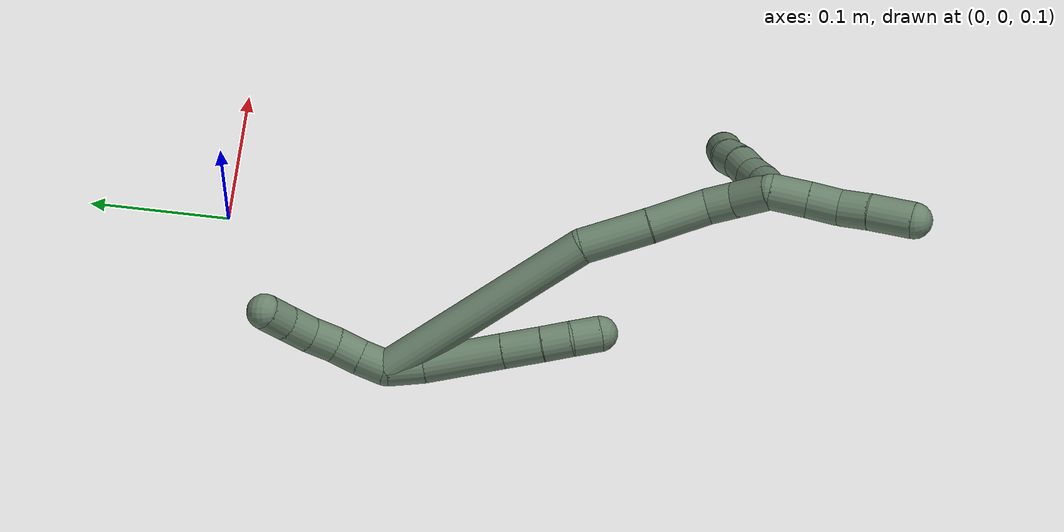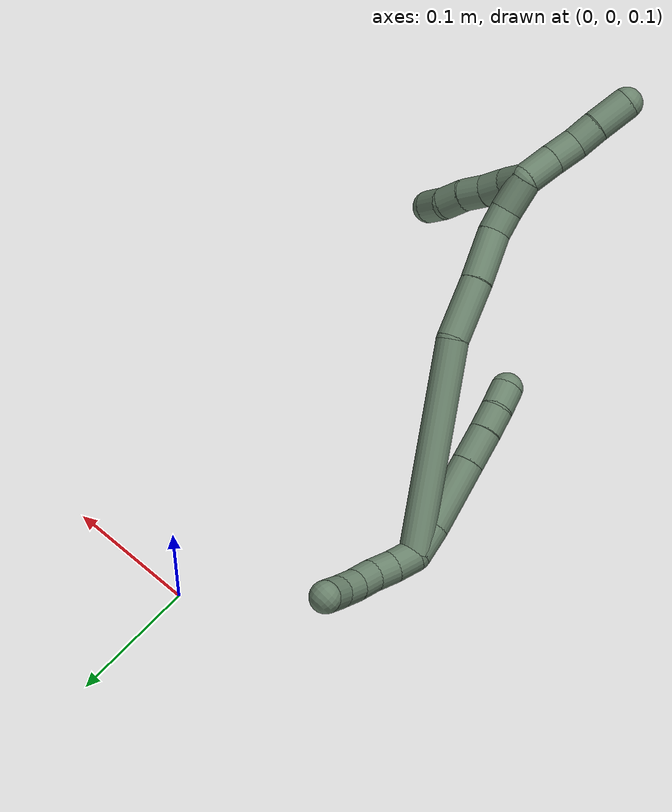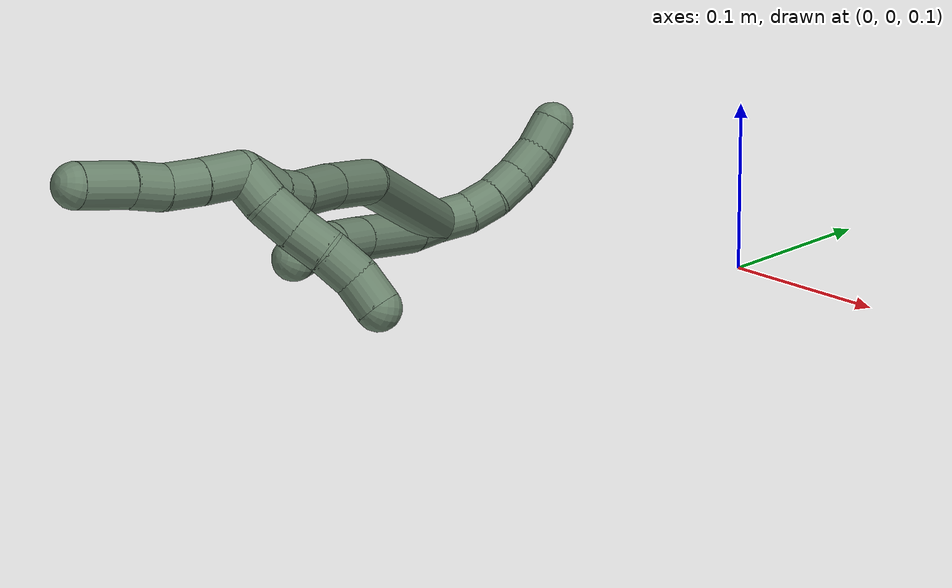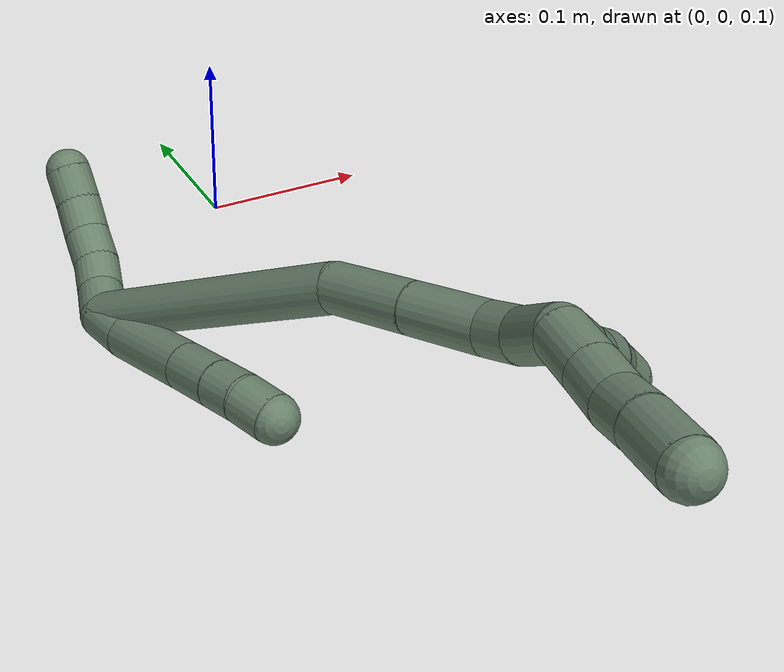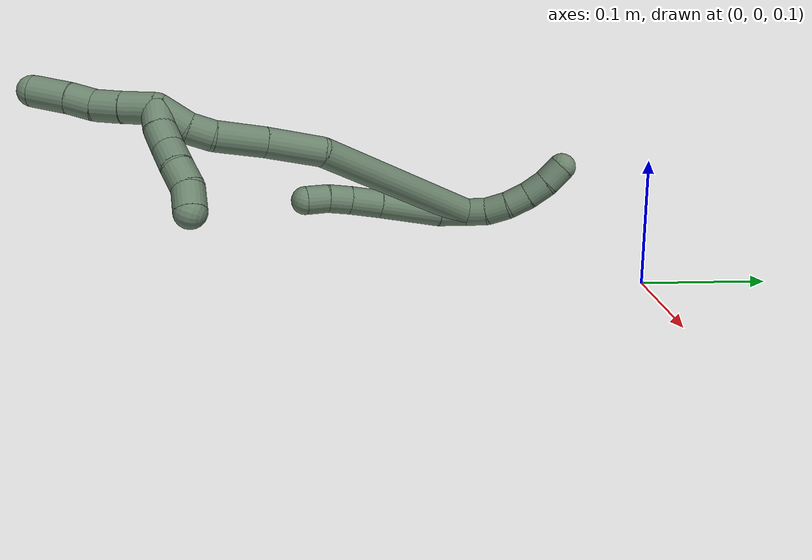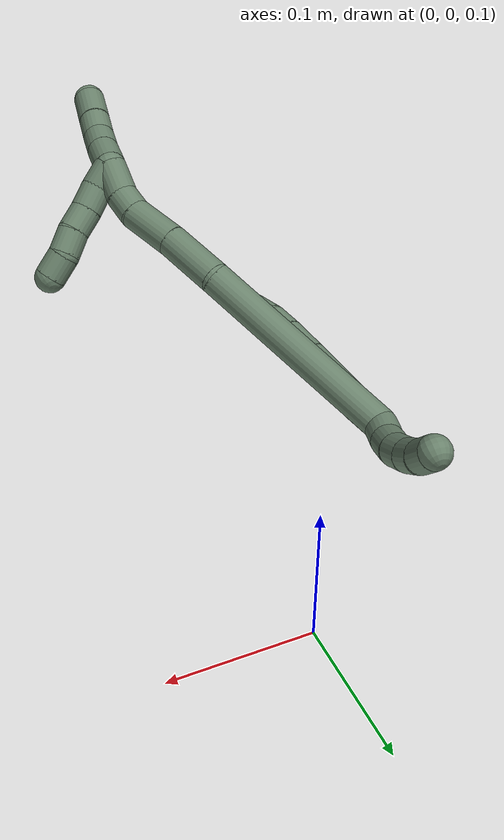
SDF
<sdf version="1.7">
 <world name="default">
  <model name="17">
   <static>0</static>
   <link name="17">
    <collision name="collision-cylinder-e_1_2_8">
     <pose>-0.0019 -0.004647 0.011968 0.370342 -0.146914 -0.027567</pose>
     <geometry><cylinder><radius>0.0125</radius><length>0.025956</length></cylinder></geometry>
     <surface>
      <friction><ode><mu>1.16</mu><mu2>1.16</mu2><slip1>0</slip1><slip2>0</slip2></ode></friction>
      <contact><ode><kp>1e+06</kp><kd>1</kd><max_vel>0</max_vel><min_depth>0.001</min_depth></ode></contact>
     </surface>
    </collision>
    <visual name="visual-cylinder-e_1_2_8">
     <pose>-0.0019 -0.004647 0.011968 0.370342 -0.146914 -0.027567</pose>
     <geometry><cylinder><radius>0.0125</radius><length>0.025956</length></cylinder></geometry>
     <material><ambient>0.415686 0.509804 0.423529 1</ambient></material>
    </visual>
    <collision name="collision-cylinder-e_2_8_9">
     <pose>-0.003612 -0.018501 0.050383 0.335016 0.006698 0.001133</pose>
     <geometry><cylinder><radius>0.0125</radius><length>0.056011</length></cylinder></geometry>
     <surface>
      <friction><ode><mu>1.16</mu><mu2>1.16</mu2><slip1>0</slip1><slip2>0</slip2></ode></friction>
      <contact><ode><kp>1e+06</kp><kd>1</kd><max_vel>0</max_vel><min_depth>0.001</min_depth></ode></contact>
     </surface>
    </collision>
    <visual name="visual-cylinder-e_2_8_9">
     <pose>-0.003612 -0.018501 0.050383 0.335016 0.006698 0.001133</pose>
     <geometry><cylinder><radius>0.0125</radius><length>0.056011</length></cylinder></geometry>
     <material><ambient>0.415686 0.509804 0.423529 1</ambient></material>
    </visual>
    <collision name="collision-cylinder-e_3_9_10">
     <pose>-0.003567 -0.03237 0.089887 0.342984 -0.010289 -0.001782</pose>
     <geometry><cylinder><radius>0.0125</radius><length>0.027729</length></cylinder></geometry>
     <surface>
      <friction><ode><mu>1.16</mu><mu2>1.16</mu2><slip1>0</slip1><slip2>0</slip2></ode></friction>
      <contact><ode><kp>1e+06</kp><kd>1</kd><max_vel>0</max_vel><min_depth>0.001</min_depth></ode></contact>
     </surface>
    </collision>
    <visual name="visual-cylinder-e_3_9_10">
     <pose>-0.003567 -0.03237 0.089887 0.342984 -0.010289 -0.001782</pose>
     <geometry><cylinder><radius>0.0125</radius><length>0.027729</length></cylinder></geometry>
     <material><ambient>0.415686 0.509804 0.423529 1</ambient></material>
    </visual>
    <collision name="collision-cylinder-e_4_10_11">
     <pose>-0.004001 -0.040853 0.11227 0.388731 -0.028863 -0.005682</pose>
     <geometry><cylinder><radius>0.0125</radius><length>0.020166</length></cylinder></geometry>
     <surface>
      <friction><ode><mu>1.16</mu><mu2>1.16</mu2><slip1>0</slip1><slip2>0</slip2></ode></friction>
      <contact><ode><kp>1e+06</kp><kd>1</kd><max_vel>0</max_vel><min_depth>0.001</min_depth></ode></contact>
     </surface>
    </collision>
    <visual name="visual-cylinder-e_4_10_11">
     <pose>-0.004001 -0.040853 0.11227 0.388731 -0.028863 -0.005682</pose>
     <geometry><cylinder><radius>0.0125</radius><length>0.020166</length></cylinder></geometry>
     <material><ambient>0.415686 0.509804 0.423529 1</ambient></material>
    </visual>
    <collision name="collision-cylinder-e_5_11_6">
     <pose>-0.005707 -0.04957 0.130281 0.513447 -0.141048 -0.037085</pose>
     <geometry><cylinder><radius>0.0125</radius><length>0.020139</length></cylinder></geometry>
     <surface>
      <friction><ode><mu>1.16</mu><mu2>1.16</mu2><slip1>0</slip1><slip2>0</slip2></ode></friction>
      <contact><ode><kp>1e+06</kp><kd>1</kd><max_vel>0</max_vel><min_depth>0.001</min_depth></ode></contact>
     </surface>
    </collision>
    <visual name="visual-cylinder-e_5_11_6">
     <pose>-0.005707 -0.04957 0.130281 0.513447 -0.141048 -0.037085</pose>
     <geometry><cylinder><radius>0.0125</radius><length>0.020139</length></cylinder></geometry>
     <material><ambient>0.415686 0.509804 0.423529 1</ambient></material>
    </visual>
    <collision name="collision-cylinder-e_1_2_12">
     <pose>0.004346 -0.000131 -0.009005 3.12702 0.449641 3.07791</pose>
     <geometry><cylinder><radius>0.0125</radius><length>0.02</length></cylinder></geometry>
     <surface>
      <friction><ode><mu>1.16</mu><mu2>1.16</mu2><slip1>0</slip1><slip2>0</slip2></ode></friction>
      <contact><ode><kp>1e+06</kp><kd>1</kd><max_vel>0</max_vel><min_depth>0.001</min_depth></ode></contact>
     </surface>
    </collision>
    <visual name="visual-cylinder-e_1_2_12">
     <pose>0.004346 -0.000131 -0.009005 3.12702 0.449641 3.07791</pose>
     <geometry><cylinder><radius>0.0125</radius><length>0.02</length></cylinder></geometry>
     <material><ambient>0.415686 0.509804 0.423529 1</ambient></material>
    </visual>
    <collision name="collision-cylinder-e_2_12_13">
     <pose>0.014909 0.00066 -0.025789 -3.02361 0.670744 -2.8059</pose>
     <geometry><cylinder><radius>0.0125</radius><length>0.02</length></cylinder></geometry>
     <surface>
      <friction><ode><mu>1.16</mu><mu2>1.16</mu2><slip1>0</slip1><slip2>0</slip2></ode></friction>
      <contact><ode><kp>1e+06</kp><kd>1</kd><max_vel>0</max_vel><min_depth>0.001</min_depth></ode></contact>
     </surface>
    </collision>
    <visual name="visual-cylinder-e_2_12_13">
     <pose>0.014909 0.00066 -0.025789 -3.02361 0.670744 -2.8059</pose>
     <geometry><cylinder><radius>0.0125</radius><length>0.02</length></cylinder></geometry>
     <material><ambient>0.415686 0.509804 0.423529 1</ambient></material>
    </visual>
    <collision name="collision-cylinder-e_3_13_14">
     <pose>0.027774 0.004369 -0.040498 -2.75914 0.727407 -2.20059</pose>
     <geometry><cylinder><radius>0.0125</radius><length>0.02</length></cylinder></geometry>
     <surface>
      <friction><ode><mu>1.16</mu><mu2>1.16</mu2><slip1>0</slip1><slip2>0</slip2></ode></friction>
      <contact><ode><kp>1e+06</kp><kd>1</kd><max_vel>0</max_vel><min_depth>0.001</min_depth></ode></contact>
     </surface>
    </collision>
    <visual name="visual-cylinder-e_3_13_14">
     <pose>0.027774 0.004369 -0.040498 -2.75914 0.727407 -2.20059</pose>
     <geometry><cylinder><radius>0.0125</radius><length>0.02</length></cylinder></geometry>
     <material><ambient>0.415686 0.509804 0.423529 1</ambient></material>
    </visual>
    <collision name="collision-cylinder-e_4_14_15">
     <pose>0.042007 0.010195 -0.053193 -2.65655 0.860924 -2.15323</pose>
     <geometry><cylinder><radius>0.0125</radius><length>0.02</length></cylinder></geometry>
     <surface>
      <friction><ode><mu>1.16</mu><mu2>1.16</mu2><slip1>0</slip1><slip2>0</slip2></ode></friction>
      <contact><ode><kp>1e+06</kp><kd>1</kd><max_vel>0</max_vel><min_depth>0.001</min_depth></ode></contact>
     </surface>
    </collision>
    <visual name="visual-cylinder-e_4_14_15">
     <pose>0.042007 0.010195 -0.053193 -2.65655 0.860924 -2.15323</pose>
     <geometry><cylinder><radius>0.0125</radius><length>0.02</length></cylinder></geometry>
     <material><ambient>0.415686 0.509804 0.423529 1</ambient></material>
    </visual>
    <collision name="collision-cylinder-e_5_15_5">
     <pose>0.057744 0.017262 -0.06312 -2.37242 0.953065 -1.8117</pose>
     <geometry><cylinder><radius>0.0125</radius><length>0.02</length></cylinder></geometry>
     <surface>
      <friction><ode><mu>1.16</mu><mu2>1.16</mu2><slip1>0</slip1><slip2>0</slip2></ode></friction>
      <contact><ode><kp>1e+06</kp><kd>1</kd><max_vel>0</max_vel><min_depth>0.001</min_depth></ode></contact>
     </surface>
    </collision>
    <visual name="visual-cylinder-e_5_15_5">
     <pose>0.057744 0.017262 -0.06312 -2.37242 0.953065 -1.8117</pose>
     <geometry><cylinder><radius>0.0125</radius><length>0.02</length></cylinder></geometry>
     <material><ambient>0.415686 0.509804 0.423529 1</ambient></material>
    </visual>
    <collision name="collision-cylinder-e_1_2_16">
     <pose>0.028495 -0.035718 0.067147 0.488872 0.358474 0.09032</pose>
     <geometry><cylinder><radius>0.0125</radius><length>0.162439</length></cylinder></geometry>
     <surface>
      <friction><ode><mu>1.16</mu><mu2>1.16</mu2><slip1>0</slip1><slip2>0</slip2></ode></friction>
      <contact><ode><kp>1e+06</kp><kd>1</kd><max_vel>0</max_vel><min_depth>0.001</min_depth></ode></contact>
     </surface>
    </collision>
    <visual name="visual-cylinder-e_1_2_16">
     <pose>0.028495 -0.035718 0.067147 0.488872 0.358474 0.09032</pose>
     <geometry><cylinder><radius>0.0125</radius><length>0.162439</length></cylinder></geometry>
     <material><ambient>0.415686 0.509804 0.423529 1</ambient></material>
    </visual>
    <collision name="collision-cylinder-e_2_16_17">
     <pose>0.058849 -0.081463 0.156408 0.425681 0.076362 0.01651</pose>
     <geometry><cylinder><radius>0.0125</radius><length>0.048702</length></cylinder></geometry>
     <surface>
      <friction><ode><mu>1.16</mu><mu2>1.16</mu2><slip1>0</slip1><slip2>0</slip2></ode></friction>
      <contact><ode><kp>1e+06</kp><kd>1</kd><max_vel>0</max_vel><min_depth>0.001</min_depth></ode></contact>
     </surface>
    </collision>
    <visual name="visual-cylinder-e_2_16_17">
     <pose>0.058849 -0.081463 0.156408 0.425681 0.076362 0.01651</pose>
     <geometry><cylinder><radius>0.0125</radius><length>0.048702</length></cylinder></geometry>
     <material><ambient>0.415686 0.509804 0.423529 1</ambient></material>
    </visual>
    <collision name="collision-cylinder-e_3_17_18">
     <pose>0.062044 -0.101171 0.196775 0.487667 0.064643 0.016087</pose>
     <geometry><cylinder><radius>0.0125</radius><length>0.041411</length></cylinder></geometry>
     <surface>
      <friction><ode><mu>1.16</mu><mu2>1.16</mu2><slip1>0</slip1><slip2>0</slip2></ode></friction>
      <contact><ode><kp>1e+06</kp><kd>1</kd><max_vel>0</max_vel><min_depth>0.001</min_depth></ode></contact>
     </surface>
    </collision>
    <visual name="visual-cylinder-e_3_17_18">
     <pose>0.062044 -0.101171 0.196775 0.487667 0.064643 0.016087</pose>
     <geometry><cylinder><radius>0.0125</radius><length>0.041411</length></cylinder></geometry>
     <material><ambient>0.415686 0.509804 0.423529 1</ambient></material>
    </visual>
    <collision name="collision-cylinder-e_4_18_19">
     <pose>0.064673 -0.113335 0.224646 0.25266 0.129296 0.016444</pose>
     <geometry><cylinder><radius>0.0125</radius><length>0.020033</length></cylinder></geometry>
     <surface>
      <friction><ode><mu>1.16</mu><mu2>1.16</mu2><slip1>0</slip1><slip2>0</slip2></ode></friction>
      <contact><ode><kp>1e+06</kp><kd>1</kd><max_vel>0</max_vel><min_depth>0.001</min_depth></ode></contact>
     </surface>
    </collision>
    <visual name="visual-cylinder-e_4_18_19">
     <pose>0.064673 -0.113335 0.224646 0.25266 0.129296 0.016444</pose>
     <geometry><cylinder><radius>0.0125</radius><length>0.020033</length></cylinder></geometry>
     <material><ambient>0.415686 0.509804 0.423529 1</ambient></material>
    </visual>
    <collision name="collision-cylinder-e_5_19_1">
     <pose>0.06996 -0.116074 0.247373 0.019518 0.295797 0.002908</pose>
     <geometry><cylinder><radius>0.0125</radius><length>0.027416</length></cylinder></geometry>
     <surface>
      <friction><ode><mu>1.16</mu><mu2>1.16</mu2><slip1>0</slip1><slip2>0</slip2></ode></friction>
      <contact><ode><kp>1e+06</kp><kd>1</kd><max_vel>0</max_vel><min_depth>0.001</min_depth></ode></contact>
     </surface>
    </collision>
    <visual name="visual-cylinder-e_5_19_1">
     <pose>0.06996 -0.116074 0.247373 0.019518 0.295797 0.002908</pose>
     <geometry><cylinder><radius>0.0125</radius><length>0.027416</length></cylinder></geometry>
     <material><ambient>0.415686 0.509804 0.423529 1</ambient></material>
    </visual>
    <collision name="collision-cylinder-e_1_1_20">
     <pose>0.070791 -0.124353 0.255423 2.13351 -0.322082 -0.572851</pose>
     <geometry><cylinder><radius>0.0125</radius><length>0.02</length></cylinder></geometry>
     <surface>
      <friction><ode><mu>1.16</mu><mu2>1.16</mu2><slip1>0</slip1><slip2>0</slip2></ode></friction>
      <contact><ode><kp>1e+06</kp><kd>1</kd><max_vel>0</max_vel><min_depth>0.001</min_depth></ode></contact>
     </surface>
    </collision>
    <visual name="visual-cylinder-e_1_1_20">
     <pose>0.070791 -0.124353 0.255423 2.13351 -0.322082 -0.572851</pose>
     <geometry><cylinder><radius>0.0125</radius><length>0.02</length></cylinder></geometry>
     <material><ambient>0.415686 0.509804 0.423529 1</ambient></material>
    </visual>
    <collision name="collision-cylinder-e_2_20_21">
     <pose>0.065448 -0.139504 0.243695 2.32284 -0.219481 -0.497371</pose>
     <geometry><cylinder><radius>0.0125</radius><length>0.02</length></cylinder></geometry>
     <surface>
      <friction><ode><mu>1.16</mu><mu2>1.16</mu2><slip1>0</slip1><slip2>0</slip2></ode></friction>
      <contact><ode><kp>1e+06</kp><kd>1</kd><max_vel>0</max_vel><min_depth>0.001</min_depth></ode></contact>
     </surface>
    </collision>
    <visual name="visual-cylinder-e_2_20_21">
     <pose>0.065448 -0.139504 0.243695 2.32284 -0.219481 -0.497371</pose>
     <geometry><cylinder><radius>0.0125</radius><length>0.02</length></cylinder></geometry>
     <material><ambient>0.415686 0.509804 0.423529 1</ambient></material>
    </visual>
    <collision name="collision-cylinder-e_3_21_22">
     <pose>0.062142 -0.154152 0.230533 2.28322 -0.113155 -0.246273</pose>
     <geometry><cylinder><radius>0.0125</radius><length>0.02</length></cylinder></geometry>
     <surface>
      <friction><ode><mu>1.16</mu><mu2>1.16</mu2><slip1>0</slip1><slip2>0</slip2></ode></friction>
      <contact><ode><kp>1e+06</kp><kd>1</kd><max_vel>0</max_vel><min_depth>0.001</min_depth></ode></contact>
     </surface>
    </collision>
    <visual name="visual-cylinder-e_3_21_22">
     <pose>0.062142 -0.154152 0.230533 2.28322 -0.113155 -0.246273</pose>
     <geometry><cylinder><radius>0.0125</radius><length>0.02</length></cylinder></geometry>
     <material><ambient>0.415686 0.509804 0.423529 1</ambient></material>
    </visual>
    <collision name="collision-cylinder-e_4_22_23">
     <pose>0.058605 -0.168271 0.216921 2.39389 -0.243128 -0.603779</pose>
     <geometry><cylinder><radius>0.0125</radius><length>0.02</length></cylinder></geometry>
     <surface>
      <friction><ode><mu>1.16</mu><mu2>1.16</mu2><slip1>0</slip1><slip2>0</slip2></ode></friction>
      <contact><ode><kp>1e+06</kp><kd>1</kd><max_vel>0</max_vel><min_depth>0.001</min_depth></ode></contact>
     </surface>
    </collision>
    <visual name="visual-cylinder-e_4_22_23">
     <pose>0.058605 -0.168271 0.216921 2.39389 -0.243128 -0.603779</pose>
     <geometry><cylinder><radius>0.0125</radius><length>0.02</length></cylinder></geometry>
     <material><ambient>0.415686 0.509804 0.423529 1</ambient></material>
    </visual>
    <collision name="collision-cylinder-e_5_23_4">
     <pose>0.05261 -0.183008 0.205231 2.08279 -0.366917 -0.614156</pose>
     <geometry><cylinder><radius>0.0125</radius><length>0.02</length></cylinder></geometry>
     <surface>
      <friction><ode><mu>1.16</mu><mu2>1.16</mu2><slip1>0</slip1><slip2>0</slip2></ode></friction>
      <contact><ode><kp>1e+06</kp><kd>1</kd><max_vel>0</max_vel><min_depth>0.001</min_depth></ode></contact>
     </surface>
    </collision>
    <visual name="visual-cylinder-e_5_23_4">
     <pose>0.05261 -0.183008 0.205231 2.08279 -0.366917 -0.614156</pose>
     <geometry><cylinder><radius>0.0125</radius><length>0.02</length></cylinder></geometry>
     <material><ambient>0.415686 0.509804 0.423529 1</ambient></material>
    </visual>
    <collision name="collision-cylinder-e_1_1_24">
     <pose>0.070049 -0.117265 0.273077 0.07411 -0.300055 -0.011208</pose>
     <geometry><cylinder><radius>0.0125</radius><length>0.026438</length></cylinder></geometry>
     <surface>
      <friction><ode><mu>1.16</mu><mu2>1.16</mu2><slip1>0</slip1><slip2>0</slip2></ode></friction>
      <contact><ode><kp>1e+06</kp><kd>1</kd><max_vel>0</max_vel><min_depth>0.001</min_depth></ode></contact>
     </surface>
    </collision>
    <visual name="visual-cylinder-e_1_1_24">
     <pose>0.070049 -0.117265 0.273077 0.07411 -0.300055 -0.011208</pose>
     <geometry><cylinder><radius>0.0125</radius><length>0.026438</length></cylinder></geometry>
     <material><ambient>0.415686 0.509804 0.423529 1</ambient></material>
    </visual>
    <collision name="collision-cylinder-e_2_24_25">
     <pose>0.062989 -0.1184 0.296344 0.018693 -0.287193 -0.002703</pose>
     <geometry><cylinder><radius>0.0125</radius><length>0.022261</length></cylinder></geometry>
     <surface>
      <friction><ode><mu>1.16</mu><mu2>1.16</mu2><slip1>0</slip1><slip2>0</slip2></ode></friction>
      <contact><ode><kp>1e+06</kp><kd>1</kd><max_vel>0</max_vel><min_depth>0.001</min_depth></ode></contact>
     </surface>
    </collision>
    <visual name="visual-cylinder-e_2_24_25">
     <pose>0.062989 -0.1184 0.296344 0.018693 -0.287193 -0.002703</pose>
     <geometry><cylinder><radius>0.0125</radius><length>0.022261</length></cylinder></geometry>
     <material><ambient>0.415686 0.509804 0.423529 1</ambient></material>
    </visual>
    <collision name="collision-cylinder-e_3_25_26">
     <pose>0.058795 -0.118128 0.317415 -0.045334 -0.099654 0.002261</pose>
     <geometry><cylinder><radius>0.0125</radius><length>0.020921</length></cylinder></geometry>
     <surface>
      <friction><ode><mu>1.16</mu><mu2>1.16</mu2><slip1>0</slip1><slip2>0</slip2></ode></friction>
      <contact><ode><kp>1e+06</kp><kd>1</kd><max_vel>0</max_vel><min_depth>0.001</min_depth></ode></contact>
     </surface>
    </collision>
    <visual name="visual-cylinder-e_3_25_26">
     <pose>0.058795 -0.118128 0.317415 -0.045334 -0.099654 0.002261</pose>
     <geometry><cylinder><radius>0.0125</radius><length>0.020921</length></cylinder></geometry>
     <material><ambient>0.415686 0.509804 0.423529 1</ambient></material>
    </visual>
    <collision name="collision-cylinder-e_4_26_3">
     <pose>0.055059 -0.117235 0.342756 -0.028184 -0.178417 0.002521</pose>
     <geometry><cylinder><radius>0.0125</radius><length>0.030379</length></cylinder></geometry>
     <surface>
      <friction><ode><mu>1.16</mu><mu2>1.16</mu2><slip1>0</slip1><slip2>0</slip2></ode></friction>
      <contact><ode><kp>1e+06</kp><kd>1</kd><max_vel>0</max_vel><min_depth>0.001</min_depth></ode></contact>
     </surface>
    </collision>
    <visual name="visual-cylinder-e_4_26_3">
     <pose>0.055059 -0.117235 0.342756 -0.028184 -0.178417 0.002521</pose>
     <geometry><cylinder><radius>0.0125</radius><length>0.030379</length></cylinder></geometry>
     <material><ambient>0.415686 0.509804 0.423529 1</ambient></material>
    </visual>
    <collision name="collision-sphere-3">
     <pose>0.052363 -0.116814 0.357698 0 -0 0</pose>
     <geometry><sphere><radius>0.0125</radius></sphere></geometry>
     <surface>
      <friction><ode><mu>1.16</mu><mu2>1.16</mu2><slip1>0</slip1><slip2>0</slip2></ode></friction>
      <contact><ode><kp>1e+06</kp><kd>1</kd><max_vel>0</max_vel><min_depth>0.001</min_depth></ode></contact>
     </surface>
    </collision>
    <visual name="visual-sphere-3">
     <pose>0.052363 -0.116814 0.357698 0 -0 0</pose>
     <geometry><sphere><radius>0.0125</radius></sphere></geometry>
     <material><ambient>0.415686 0.509804 0.423529 1</ambient></material>
    </visual>
    <collision name="collision-sphere-26">
     <pose>0.057754 -0.117656 0.327813 0 -0 0</pose>
     <geometry><sphere><radius>0.0125</radius></sphere></geometry>
     <surface>
      <friction><ode><mu>1.16</mu><mu2>1.16</mu2><slip1>0</slip1><slip2>0</slip2></ode></friction>
      <contact><ode><kp>1e+06</kp><kd>1</kd><max_vel>0</max_vel><min_depth>0.001</min_depth></ode></contact>
     </surface>
    </collision>
    <visual name="visual-sphere-26">
     <pose>0.057754 -0.117656 0.327813 0 -0 0</pose>
     <geometry><sphere><radius>0.0125</radius></sphere></geometry>
     <material><ambient>0.415686 0.509804 0.423529 1</ambient></material>
    </visual>
    <collision name="collision-sphere-25">
     <pose>0.059836 -0.118599 0.307017 0 -0 0</pose>
     <geometry><sphere><radius>0.0125</radius></sphere></geometry>
     <surface>
      <friction><ode><mu>1.16</mu><mu2>1.16</mu2><slip1>0</slip1><slip2>0</slip2></ode></friction>
      <contact><ode><kp>1e+06</kp><kd>1</kd><max_vel>0</max_vel><min_depth>0.001</min_depth></ode></contact>
     </surface>
    </collision>
    <visual name="visual-sphere-25">
     <pose>0.059836 -0.118599 0.307017 0 -0 0</pose>
     <geometry><sphere><radius>0.0125</radius></sphere></geometry>
     <material><ambient>0.415686 0.509804 0.423529 1</ambient></material>
    </visual>
    <collision name="collision-sphere-24">
     <pose>0.066142 -0.1182 0.285671 0 -0 0</pose>
     <geometry><sphere><radius>0.0125</radius></sphere></geometry>
     <surface>
      <friction><ode><mu>1.16</mu><mu2>1.16</mu2><slip1>0</slip1><slip2>0</slip2></ode></friction>
      <contact><ode><kp>1e+06</kp><kd>1</kd><max_vel>0</max_vel><min_depth>0.001</min_depth></ode></contact>
     </surface>
    </collision>
    <visual name="visual-sphere-24">
     <pose>0.066142 -0.1182 0.285671 0 -0 0</pose>
     <geometry><sphere><radius>0.0125</radius></sphere></geometry>
     <material><ambient>0.415686 0.509804 0.423529 1</ambient></material>
    </visual>
    <collision name="collision-sphere-4">
     <pose>0.049023 -0.191145 0.200658 0 -0 0</pose>
     <geometry><sphere><radius>0.0125</radius></sphere></geometry>
     <surface>
      <friction><ode><mu>1.16</mu><mu2>1.16</mu2><slip1>0</slip1><slip2>0</slip2></ode></friction>
      <contact><ode><kp>1e+06</kp><kd>1</kd><max_vel>0</max_vel><min_depth>0.001</min_depth></ode></contact>
     </surface>
    </collision>
    <visual name="visual-sphere-4">
     <pose>0.049023 -0.191145 0.200658 0 -0 0</pose>
     <geometry><sphere><radius>0.0125</radius></sphere></geometry>
     <material><ambient>0.415686 0.509804 0.423529 1</ambient></material>
    </visual>
    <collision name="collision-sphere-23">
     <pose>0.056198 -0.17487 0.209804 0 -0 0</pose>
     <geometry><sphere><radius>0.0125</radius></sphere></geometry>
     <surface>
      <friction><ode><mu>1.16</mu><mu2>1.16</mu2><slip1>0</slip1><slip2>0</slip2></ode></friction>
      <contact><ode><kp>1e+06</kp><kd>1</kd><max_vel>0</max_vel><min_depth>0.001</min_depth></ode></contact>
     </surface>
    </collision>
    <visual name="visual-sphere-23">
     <pose>0.056198 -0.17487 0.209804 0 -0 0</pose>
     <geometry><sphere><radius>0.0125</radius></sphere></geometry>
     <material><ambient>0.415686 0.509804 0.423529 1</ambient></material>
    </visual>
    <collision name="collision-sphere-22">
     <pose>0.061012 -0.161671 0.224038 0 -0 0</pose>
     <geometry><sphere><radius>0.0125</radius></sphere></geometry>
     <surface>
      <friction><ode><mu>1.16</mu><mu2>1.16</mu2><slip1>0</slip1><slip2>0</slip2></ode></friction>
      <contact><ode><kp>1e+06</kp><kd>1</kd><max_vel>0</max_vel><min_depth>0.001</min_depth></ode></contact>
     </surface>
    </collision>
    <visual name="visual-sphere-22">
     <pose>0.061012 -0.161671 0.224038 0 -0 0</pose>
     <geometry><sphere><radius>0.0125</radius></sphere></geometry>
     <material><ambient>0.415686 0.509804 0.423529 1</ambient></material>
    </visual>
    <collision name="collision-sphere-21">
     <pose>0.063271 -0.146632 0.237028 0 -0 0</pose>
     <geometry><sphere><radius>0.0125</radius></sphere></geometry>
     <surface>
      <friction><ode><mu>1.16</mu><mu2>1.16</mu2><slip1>0</slip1><slip2>0</slip2></ode></friction>
      <contact><ode><kp>1e+06</kp><kd>1</kd><max_vel>0</max_vel><min_depth>0.001</min_depth></ode></contact>
     </surface>
    </collision>
    <visual name="visual-sphere-21">
     <pose>0.063271 -0.146632 0.237028 0 -0 0</pose>
     <geometry><sphere><radius>0.0125</radius></sphere></geometry>
     <material><ambient>0.415686 0.509804 0.423529 1</ambient></material>
    </visual>
    <collision name="collision-sphere-20">
     <pose>0.067625 -0.132377 0.250362 0 -0 0</pose>
     <geometry><sphere><radius>0.0125</radius></sphere></geometry>
     <surface>
      <friction><ode><mu>1.16</mu><mu2>1.16</mu2><slip1>0</slip1><slip2>0</slip2></ode></friction>
      <contact><ode><kp>1e+06</kp><kd>1</kd><max_vel>0</max_vel><min_depth>0.001</min_depth></ode></contact>
     </surface>
    </collision>
    <visual name="visual-sphere-20">
     <pose>0.067625 -0.132377 0.250362 0 -0 0</pose>
     <geometry><sphere><radius>0.0125</radius></sphere></geometry>
     <material><ambient>0.415686 0.509804 0.423529 1</ambient></material>
    </visual>
    <collision name="collision-sphere-6">
     <pose>-0.007123 -0.054466 0.138965 0 -0 0</pose>
     <geometry><sphere><radius>0.0125</radius></sphere></geometry>
     <surface>
      <friction><ode><mu>1.16</mu><mu2>1.16</mu2><slip1>0</slip1><slip2>0</slip2></ode></friction>
      <contact><ode><kp>1e+06</kp><kd>1</kd><max_vel>0</max_vel><min_depth>0.001</min_depth></ode></contact>
     </surface>
    </collision>
    <visual name="visual-sphere-6">
     <pose>-0.007123 -0.054466 0.138965 0 -0 0</pose>
     <geometry><sphere><radius>0.0125</radius></sphere></geometry>
     <material><ambient>0.415686 0.509804 0.423529 1</ambient></material>
    </visual>
    <collision name="collision-sphere-11">
     <pose>-0.004292 -0.044673 0.121597 0 -0 0</pose>
     <geometry><sphere><radius>0.0125</radius></sphere></geometry>
     <surface>
      <friction><ode><mu>1.16</mu><mu2>1.16</mu2><slip1>0</slip1><slip2>0</slip2></ode></friction>
      <contact><ode><kp>1e+06</kp><kd>1</kd><max_vel>0</max_vel><min_depth>0.001</min_depth></ode></contact>
     </surface>
    </collision>
    <visual name="visual-sphere-11">
     <pose>-0.004292 -0.044673 0.121597 0 -0 0</pose>
     <geometry><sphere><radius>0.0125</radius></sphere></geometry>
     <material><ambient>0.415686 0.509804 0.423529 1</ambient></material>
    </visual>
    <collision name="collision-sphere-10">
     <pose>-0.00371 -0.037033 0.102943 0 -0 0</pose>
     <geometry><sphere><radius>0.0125</radius></sphere></geometry>
     <surface>
      <friction><ode><mu>1.16</mu><mu2>1.16</mu2><slip1>0</slip1><slip2>0</slip2></ode></friction>
      <contact><ode><kp>1e+06</kp><kd>1</kd><max_vel>0</max_vel><min_depth>0.001</min_depth></ode></contact>
     </surface>
    </collision>
    <visual name="visual-sphere-10">
     <pose>-0.00371 -0.037033 0.102943 0 -0 0</pose>
     <geometry><sphere><radius>0.0125</radius></sphere></geometry>
     <material><ambient>0.415686 0.509804 0.423529 1</ambient></material>
    </visual>
    <collision name="collision-sphere-9">
     <pose>-0.003424 -0.027708 0.076831 0 -0 0</pose>
     <geometry><sphere><radius>0.0125</radius></sphere></geometry>
     <surface>
      <friction><ode><mu>1.16</mu><mu2>1.16</mu2><slip1>0</slip1><slip2>0</slip2></ode></friction>
      <contact><ode><kp>1e+06</kp><kd>1</kd><max_vel>0</max_vel><min_depth>0.001</min_depth></ode></contact>
     </surface>
    </collision>
    <visual name="visual-sphere-9">
     <pose>-0.003424 -0.027708 0.076831 0 -0 0</pose>
     <geometry><sphere><radius>0.0125</radius></sphere></geometry>
     <material><ambient>0.415686 0.509804 0.423529 1</ambient></material>
    </visual>
    <collision name="collision-sphere-2">
     <geometry><sphere><radius>0.0125</radius></sphere></geometry>
     <surface>
      <friction><ode><mu>1.16</mu><mu2>1.16</mu2><slip1>0</slip1><slip2>0</slip2></ode></friction>
      <contact><ode><kp>1e+06</kp><kd>1</kd><max_vel>0</max_vel><min_depth>0.001</min_depth></ode></contact>
     </surface>
    </collision>
    <visual name="visual-sphere-2">
     <geometry><sphere><radius>0.0125</radius></sphere></geometry>
     <material><ambient>0.415686 0.509804 0.423529 1</ambient></material>
    </visual>
    <collision name="collision-sphere-19">
     <pose>0.065964 -0.115818 0.234263 0 -0 0</pose>
     <geometry><sphere><radius>0.0125</radius></sphere></geometry>
     <surface>
      <friction><ode><mu>1.16</mu><mu2>1.16</mu2><slip1>0</slip1><slip2>0</slip2></ode></friction>
      <contact><ode><kp>1e+06</kp><kd>1</kd><max_vel>0</max_vel><min_depth>0.001</min_depth></ode></contact>
     </surface>
    </collision>
    <visual name="visual-sphere-19">
     <pose>0.065964 -0.115818 0.234263 0 -0 0</pose>
     <geometry><sphere><radius>0.0125</radius></sphere></geometry>
     <material><ambient>0.415686 0.509804 0.423529 1</ambient></material>
    </visual>
    <collision name="collision-sphere-8">
     <pose>-0.0038 -0.009293 0.023936 0 -0 0</pose>
     <geometry><sphere><radius>0.0125</radius></sphere></geometry>
     <surface>
      <friction><ode><mu>1.16</mu><mu2>1.16</mu2><slip1>0</slip1><slip2>0</slip2></ode></friction>
      <contact><ode><kp>1e+06</kp><kd>1</kd><max_vel>0</max_vel><min_depth>0.001</min_depth></ode></contact>
     </surface>
    </collision>
    <visual name="visual-sphere-8">
     <pose>-0.0038 -0.009293 0.023936 0 -0 0</pose>
     <geometry><sphere><radius>0.0125</radius></sphere></geometry>
     <material><ambient>0.415686 0.509804 0.423529 1</ambient></material>
    </visual>
    <collision name="collision-sphere-12">
     <pose>0.008693 -0.000262 -0.01801 0 -0 0</pose>
     <geometry><sphere><radius>0.0125</radius></sphere></geometry>
     <surface>
      <friction><ode><mu>1.16</mu><mu2>1.16</mu2><slip1>0</slip1><slip2>0</slip2></ode></friction>
      <contact><ode><kp>1e+06</kp><kd>1</kd><max_vel>0</max_vel><min_depth>0.001</min_depth></ode></contact>
     </surface>
    </collision>
    <visual name="visual-sphere-12">
     <pose>0.008693 -0.000262 -0.01801 0 -0 0</pose>
     <geometry><sphere><radius>0.0125</radius></sphere></geometry>
     <material><ambient>0.415686 0.509804 0.423529 1</ambient></material>
    </visual>
    <collision name="collision-sphere-13">
     <pose>0.021124 0.001582 -0.033568 0 -0 0</pose>
     <geometry><sphere><radius>0.0125</radius></sphere></geometry>
     <surface>
      <friction><ode><mu>1.16</mu><mu2>1.16</mu2><slip1>0</slip1><slip2>0</slip2></ode></friction>
      <contact><ode><kp>1e+06</kp><kd>1</kd><max_vel>0</max_vel><min_depth>0.001</min_depth></ode></contact>
     </surface>
    </collision>
    <visual name="visual-sphere-13">
     <pose>0.021124 0.001582 -0.033568 0 -0 0</pose>
     <geometry><sphere><radius>0.0125</radius></sphere></geometry>
     <material><ambient>0.415686 0.509804 0.423529 1</ambient></material>
    </visual>
    <collision name="collision-sphere-14">
     <pose>0.034423 0.007156 -0.047427 0 -0 0</pose>
     <geometry><sphere><radius>0.0125</radius></sphere></geometry>
     <surface>
      <friction><ode><mu>1.16</mu><mu2>1.16</mu2><slip1>0</slip1><slip2>0</slip2></ode></friction>
      <contact><ode><kp>1e+06</kp><kd>1</kd><max_vel>0</max_vel><min_depth>0.001</min_depth></ode></contact>
     </surface>
    </collision>
    <visual name="visual-sphere-14">
     <pose>0.034423 0.007156 -0.047427 0 -0 0</pose>
     <geometry><sphere><radius>0.0125</radius></sphere></geometry>
     <material><ambient>0.415686 0.509804 0.423529 1</ambient></material>
    </visual>
    <collision name="collision-sphere-15">
     <pose>0.049592 0.013234 -0.058958 0 -0 0</pose>
     <geometry><sphere><radius>0.0125</radius></sphere></geometry>
     <surface>
      <friction><ode><mu>1.16</mu><mu2>1.16</mu2><slip1>0</slip1><slip2>0</slip2></ode></friction>
      <contact><ode><kp>1e+06</kp><kd>1</kd><max_vel>0</max_vel><min_depth>0.001</min_depth></ode></contact>
     </surface>
    </collision>
    <visual name="visual-sphere-15">
     <pose>0.049592 0.013234 -0.058958 0 -0 0</pose>
     <geometry><sphere><radius>0.0125</radius></sphere></geometry>
     <material><ambient>0.415686 0.509804 0.423529 1</ambient></material>
    </visual>
    <collision name="collision-sphere-5">
     <pose>0.065896 0.021291 -0.067281 0 -0 0</pose>
     <geometry><sphere><radius>0.0125</radius></sphere></geometry>
     <surface>
      <friction><ode><mu>1.16</mu><mu2>1.16</mu2><slip1>0</slip1><slip2>0</slip2></ode></friction>
      <contact><ode><kp>1e+06</kp><kd>1</kd><max_vel>0</max_vel><min_depth>0.001</min_depth></ode></contact>
     </surface>
    </collision>
    <visual name="visual-sphere-5">
     <pose>0.065896 0.021291 -0.067281 0 -0 0</pose>
     <geometry><sphere><radius>0.0125</radius></sphere></geometry>
     <material><ambient>0.415686 0.509804 0.423529 1</ambient></material>
    </visual>
    <collision name="collision-sphere-16">
     <pose>0.056991 -0.071437 0.134295 0 -0 0</pose>
     <geometry><sphere><radius>0.0125</radius></sphere></geometry>
     <surface>
      <friction><ode><mu>1.16</mu><mu2>1.16</mu2><slip1>0</slip1><slip2>0</slip2></ode></friction>
      <contact><ode><kp>1e+06</kp><kd>1</kd><max_vel>0</max_vel><min_depth>0.001</min_depth></ode></contact>
     </surface>
    </collision>
    <visual name="visual-sphere-16">
     <pose>0.056991 -0.071437 0.134295 0 -0 0</pose>
     <geometry><sphere><radius>0.0125</radius></sphere></geometry>
     <material><ambient>0.415686 0.509804 0.423529 1</ambient></material>
    </visual>
    <collision name="collision-sphere-17">
     <pose>0.060706 -0.091489 0.178522 0 -0 0</pose>
     <geometry><sphere><radius>0.0125</radius></sphere></geometry>
     <surface>
      <friction><ode><mu>1.16</mu><mu2>1.16</mu2><slip1>0</slip1><slip2>0</slip2></ode></friction>
      <contact><ode><kp>1e+06</kp><kd>1</kd><max_vel>0</max_vel><min_depth>0.001</min_depth></ode></contact>
     </surface>
    </collision>
    <visual name="visual-sphere-17">
     <pose>0.060706 -0.091489 0.178522 0 -0 0</pose>
     <geometry><sphere><radius>0.0125</radius></sphere></geometry>
     <material><ambient>0.415686 0.509804 0.423529 1</ambient></material>
    </visual>
    <collision name="collision-sphere-18">
     <pose>0.063381 -0.110852 0.215029 0 -0 0</pose>
     <geometry><sphere><radius>0.0125</radius></sphere></geometry>
     <surface>
      <friction><ode><mu>1.16</mu><mu2>1.16</mu2><slip1>0</slip1><slip2>0</slip2></ode></friction>
      <contact><ode><kp>1e+06</kp><kd>1</kd><max_vel>0</max_vel><min_depth>0.001</min_depth></ode></contact>
     </surface>
    </collision>
    <visual name="visual-sphere-18">
     <pose>0.063381 -0.110852 0.215029 0 -0 0</pose>
     <geometry><sphere><radius>0.0125</radius></sphere></geometry>
     <material><ambient>0.415686 0.509804 0.423529 1</ambient></material>
    </visual>
    <collision name="collision-sphere-1">
     <pose>0.073956 -0.11633 0.260483 0 -0 0</pose>
     <geometry><sphere><radius>0.0125</radius></sphere></geometry>
     <surface>
      <friction><ode><mu>1.16</mu><mu2>1.16</mu2><slip1>0</slip1><slip2>0</slip2></ode></friction>
      <contact><ode><kp>1e+06</kp><kd>1</kd><max_vel>0</max_vel><min_depth>0.001</min_depth></ode></contact>
     </surface>
    </collision>
    <visual name="visual-sphere-1">
     <pose>0.073956 -0.11633 0.260483 0 -0 0</pose>
     <geometry><sphere><radius>0.0125</radius></sphere></geometry>
     <material><ambient>0.415686 0.509804 0.423529 1</ambient></material>
    </visual>
    <inertial>
     <pose>0.037355 -0.066394 0.13139 0 -0 0</pose>
     <mass>0.75</mass>
     <inertia><ixx>0.00043</ixx><ixy>0</ixy><ixz>0</ixz><iyy>0.00039</iyy><iyz>0</iyz><izz>8e-05</izz></inertia>
    </inertial>
   </link>
   <pose>-0.118805 -0.131034 0.131591 0.799584 -1.09083 0.61269</pose>
  </model>
 </world>
</sdf>
